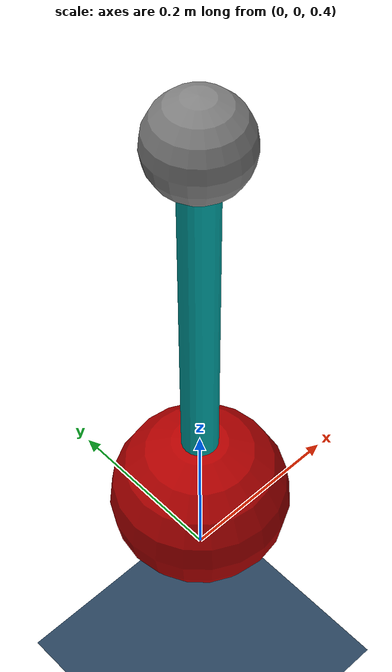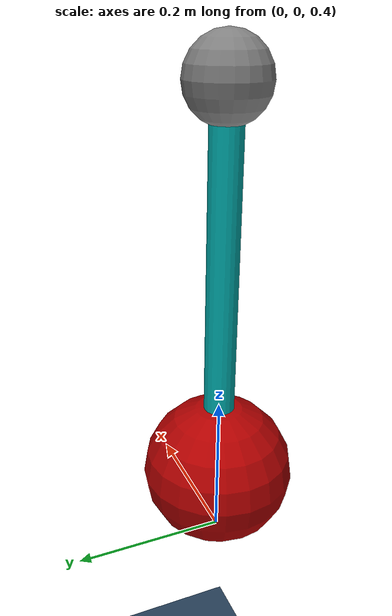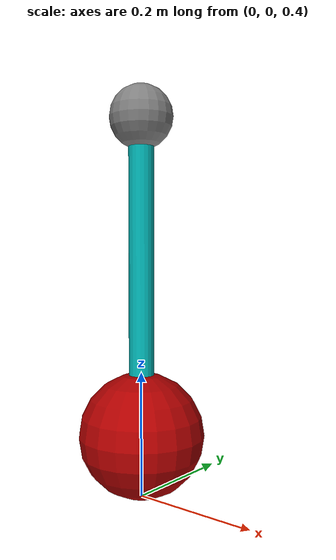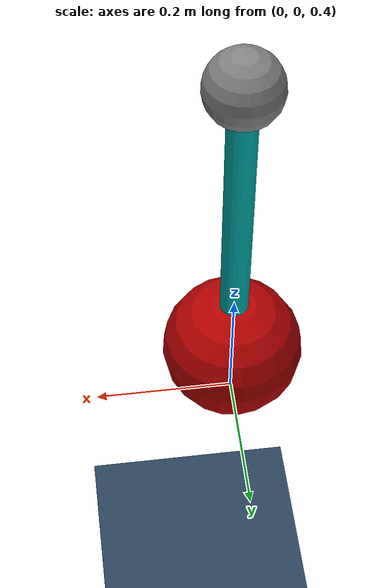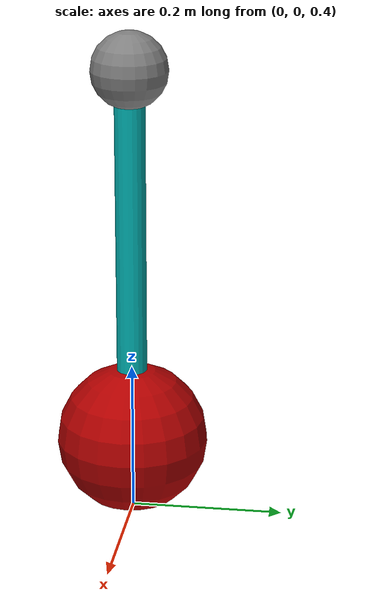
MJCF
<mujoco model="pendulum">
  <option gravity="0 0 -9.81" integrator="RK4" timestep="0.001"/>

  <asset>
    <texture name="grid" type="2d" builtin="checker" rgb1=".1 .2 .3" rgb2=".2 .3 .4" width="300" height="300"/>
    <material name="grid" texture="grid" texrepeat="1 1" texuniform="true" reflectance=".2"/>
  </asset>

  <worldbody>
    <!-- Ground plane -->
    <geom name="floor" type="plane" size="2 2 0.1" material="grid"/>

    <!-- Light source -->
    <light pos="0 0 3" dir="0 0 -1" diffuse="1 1 1"/>

    <!-- Pendulum root - fixed to world -->
    <body name="base" pos="0 0 1">
      <joint name="root" type="free" limited="false"/>
      <geom name="base" type="sphere" size="0.05" rgba="0.5 0.5 0.5 1"/>

      <!-- Pendulum arm -->
      <body name="arm" pos="0 0 0">
        <joint name="hinge" type="hinge" axis="0 1 0" damping="0.1"/>
        <geom name="arm" type="capsule" fromto="0 0 0 0 0 -0.5" size="0.02" rgba="0 0.7 0.7 1"/>
        <!-- Pendulum weight -->
        <geom name="weight" type="sphere" pos="0 0 -0.5" size="0.1" rgba="0.7 0 0 1" mass="1"/>
      </body>
    </body>
  </worldbody>
</mujoco>
